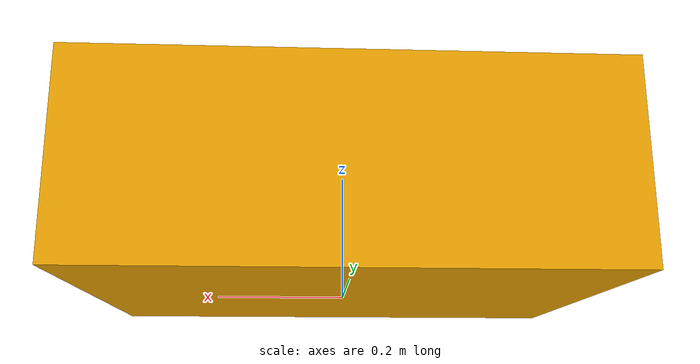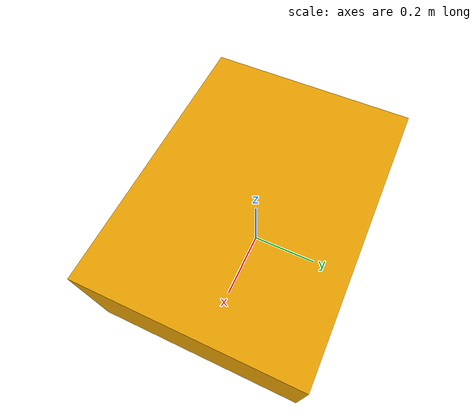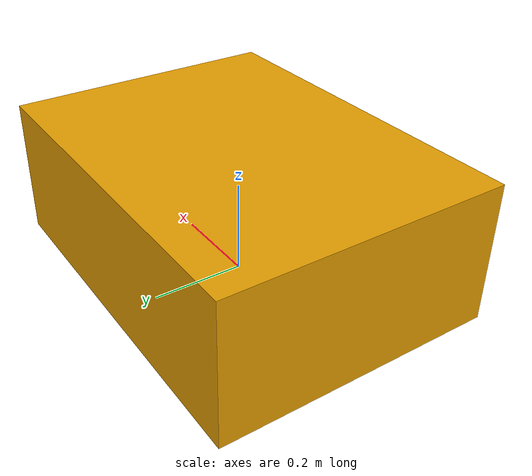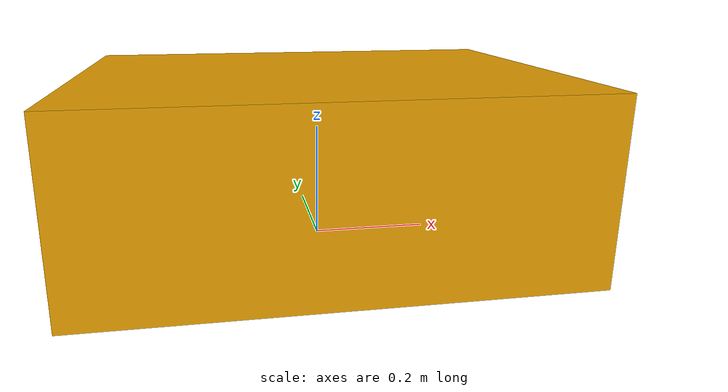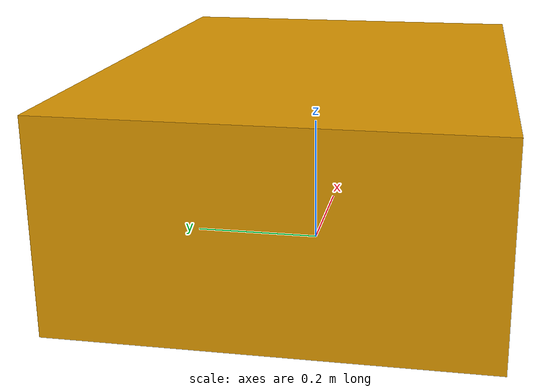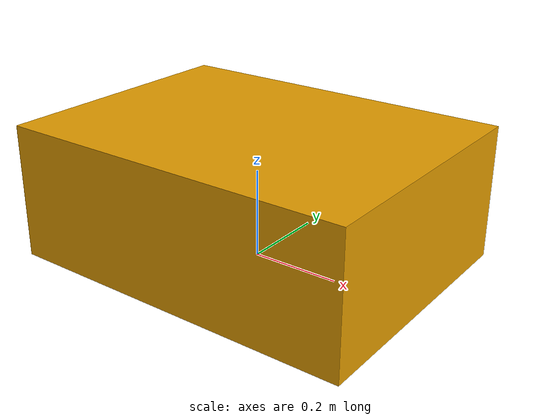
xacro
<?xml version="1.0"?>

<robot xmlns:xacro="http://www.ros.org/wiki/xacro">

<link name="base_link">

  <inertial>
    <origin xyz="0 0 0"/>
    <mass value="30"/>
    <inertia
      ixx="2.0"
      iyy="2.0"
      izz="2.0"
      ixy="0"
      ixz="0"
      iyz="0"/>
  </inertial>

  <visual>
    <origin xyz="0 0 0.15"/>
    <geometry>
      <box size="0.8 0.6 0.3"/>
    </geometry>
  </visual>

  <collision>
    <origin xyz="0 0 0.15"/>
    <geometry>
      <box size="0.8 0.6 0.3"/>
    </geometry>
  </collision>

</link>

</robot>
